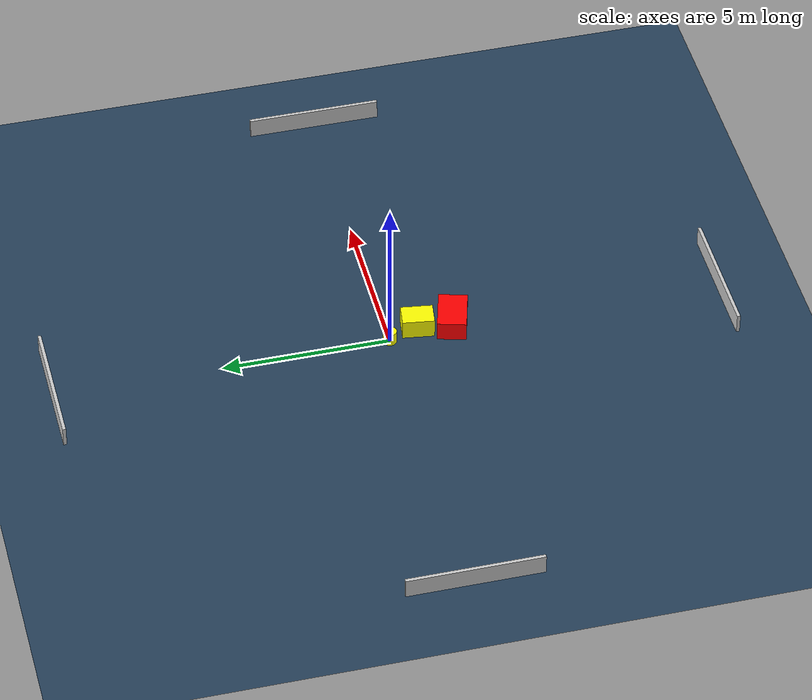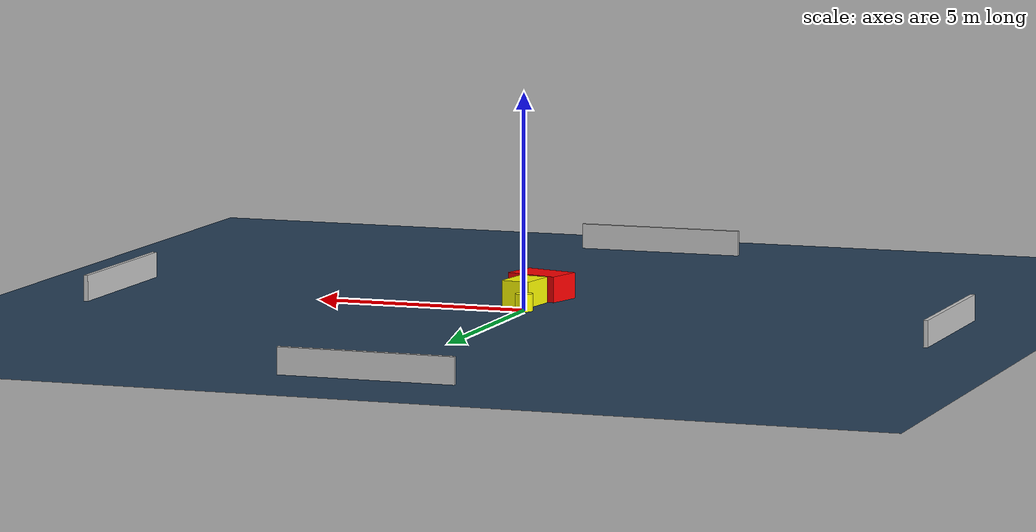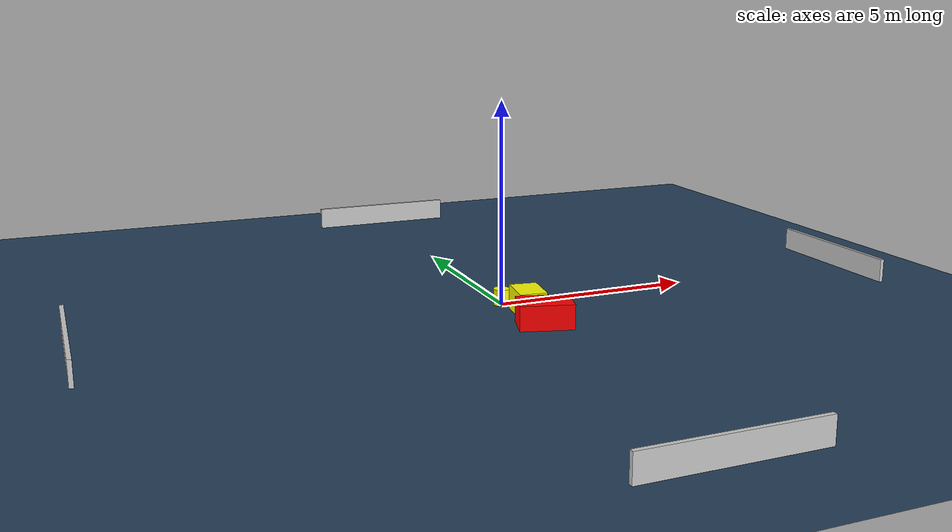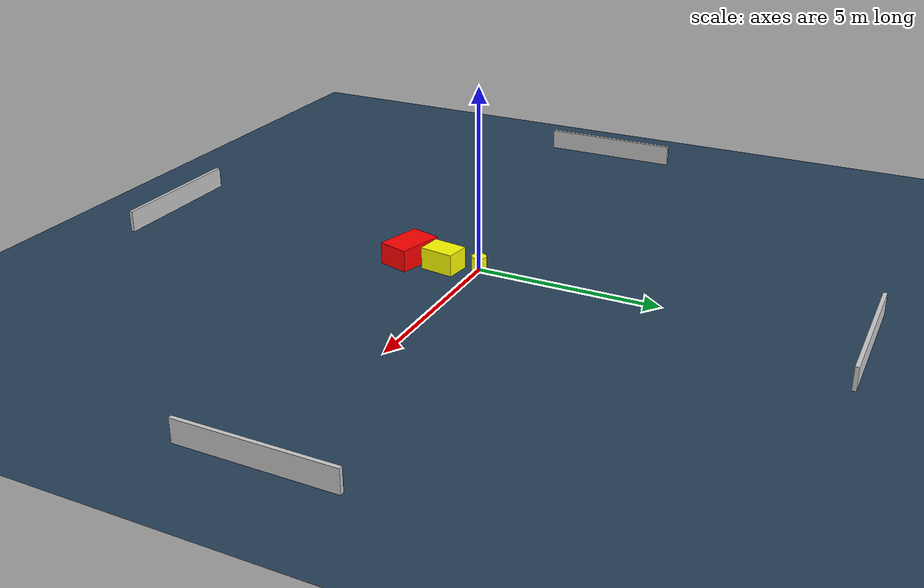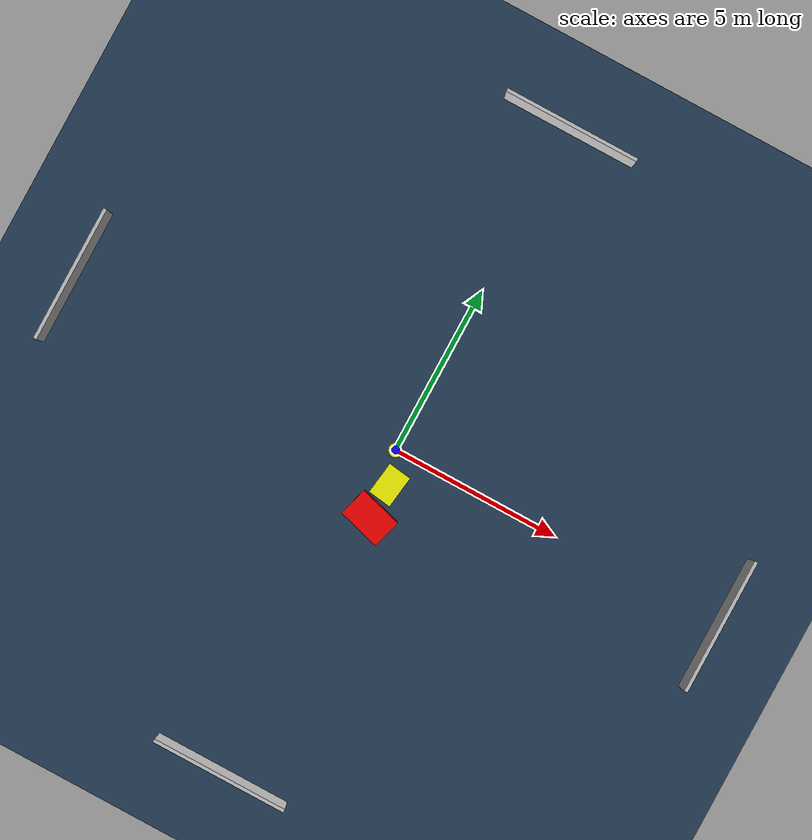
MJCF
<?xml version="1.0" ?>
<mujoco model="generated_environment">
  <option timestep="0.01" integrator="RK4" cone="elliptic"/>
  <default>
    <geom density="1"/>
  </default>
  <asset>
    <texture builtin="gradient" height="3072" name="skybox" rgb1="0.3 0.5 0.7" rgb2="0 0 0" type="skybox" width="512"/>
    <texture builtin="checker" height="300" name="groundplane" rgb1="0.2 0.3 0.4" rgb2="0.1 0.2 0.3" type="2d" width="300"/>
    <material name="groundplane" reflectance="0.2" texrepeat="5 5" texture="groundplane"/>
  </asset>
  <worldbody>
    <light dir="0 0 -1" directional="true" pos="0 0 1.5"/>
    <geom condim="3" friction="0.5 0.005 0.001" material="groundplane" name="floor" pos="0 0 0" size="0 0 0.05" type="plane"/>
    <body name="walls">
      <geom name="wall_1" condim="4" pos="-10.0 0.0 0.3" rgba="0.800000011920929 0.800000011920929 0.800000011920929 1.0" size="0.05 2.0 0.3" type="box"/>
      <geom name="wall_2" condim="4" pos="10.0 0.0 0.3" rgba="0.800000011920929 0.800000011920929 0.800000011920929 1.0" size="0.05 2.0 0.3" type="box"/>
      <geom name="wall_3" condim="4" pos="0.0 -10.0 0.3" rgba="0.800000011920929 0.800000011920929 0.800000011920929 1.0" size="2.0 0.05 0.3" type="box"/>
      <geom name="wall_4" condim="4" pos="0.0 10.0 0.3" rgba="0.800000011920929 0.800000011920929 0.800000011920929 1.0" size="2.0 0.05 0.3" type="box"/>
    </body>
    <body name="robot">
      <joint name="joint_x" type="slide" pos="0 0 0" axis="1 0 0"/>
      <joint name="joint_y" type="slide" pos="0 0 0" axis="0 1 0"/>
      <geom name="robot" type="cylinder" pos="0.0 0.0 0.2" size="0.2 0.2 0.0" mass="5.0" friction="1.0 0.005 0.0001" condim="4" rgba="1.0 1.0 0.0 1.0"/>
    </body>
    <body name="obstacle_1_movable">
      <geom name="obstacle_1_movable" condim="4" pos="0.30935639208529775 -0.9033460573053274 0.3" euler="0 0 82.13521763889845" friction="0.0 0.005 0.001" rgba="1.0 1.0 0.0 1.0" size="0.47369375607929104 0.33965043667180383 0.3" type="box" mass="0.1"/>
      <joint type="free"/>
    </body>
    <body name="obstacle_2_static">
      <geom name="obstacle_2_static" condim="4" pos="0.2615418255045916 -1.9434426407964918 0.3" euler="0 0 74.21006888170706" friction="0.0 0.005 0.001" rgba="1.0 0.0 0.0 1.0" size="0.43088468179994627 0.6401506187280557 0.3" type="box"/>
    </body>
  </worldbody>
  <actuator>
    <motor name="actuator_x" joint="joint_x" gear="1" ctrlrange="-1 1"/>
    <motor name="actuator_y" joint="joint_y" gear="1" ctrlrange="-1 1"/>
  </actuator>
</mujoco>
